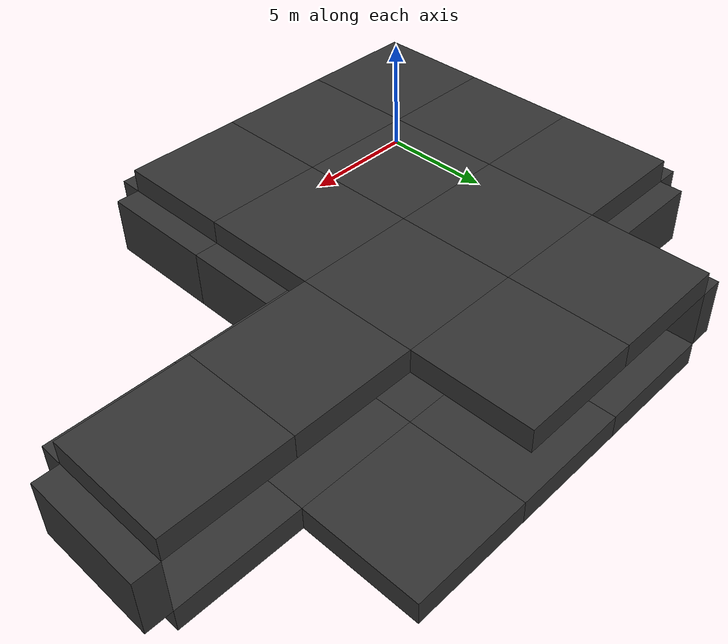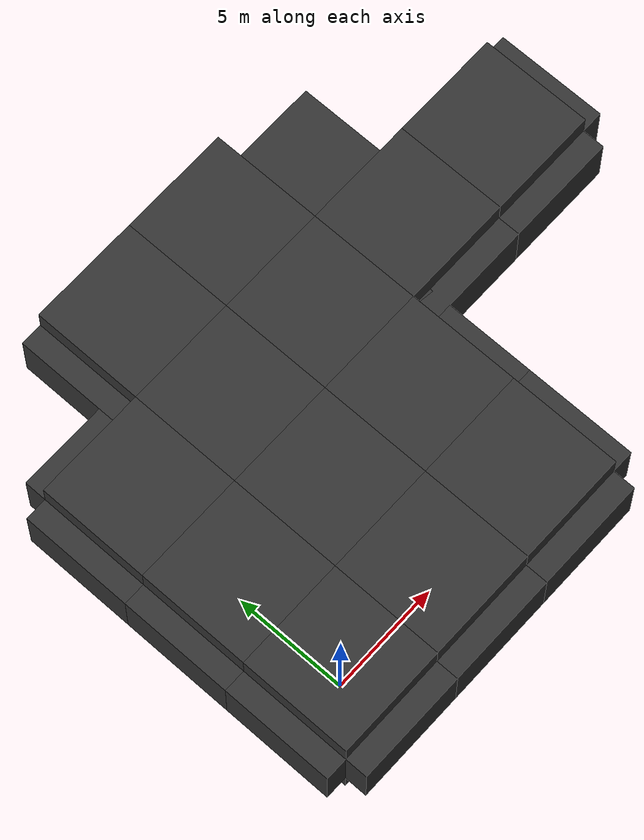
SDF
<sdf version="1.7">
 <world name="RG1">
  <model name="floor_1">
   <static>true</static>
   <pose>0.0 0.0 -0.5 0.0 0.0 0.0</pose>
   <link name="floor_1-base-link">
    <visual name="floor_1-visual">
     <geometry><box><size>5 5 1.0</size></box></geometry>
     <material><diffuse>0.2 0.2 0.2 1</diffuse><specular>0.1 0.1 0.1 1</specular></material>
    </visual>
    <collision name="floor_1-collision"><geometry><box><size>5 5 1.0</size></box></geometry></collision>
   </link>
  </model>
  <model name="ceiling_1">
   <static>true</static>
   <pose>0.0 0.0 2.9 0.0 0.0 0.0</pose>
   <link name="ceiling_1-base-link">
    <visual name="ceiling_1-visual">
     <geometry><box><size>5 5 1.0</size></box></geometry>
     <material><diffuse>0.2 0.2 0.2 1</diffuse><specular>0.1 0.1 0.1 1</specular></material>
    </visual>
    <collision name="ceiling_1-collision"><geometry><box><size>5 5 1.0</size></box></geometry></collision>
    <light type="point" name="ceiling_1-light">
     <pose>0 0 -1 0 0 0</pose>
     <cast_shadows>false</cast_shadows>
     <diffuse>0.8 0.8 0.8 1</diffuse>
     <attenuation>
      <range>10</range>
      <constant>0.8</constant>
      <linear>0.05</linear>
      <quadratic>0.01</quadratic>
     </attenuation>
    </light>
   </link>
  </model>
  <model name="wall_1">
   <static>true</static>
   <pose>-3.0 0.0 1.2 0.0 0.0 1.570796326795</pose>
   <link name="wall_1-base-link">
    <visual name="wall_1-visual">
     <geometry><box><size>5 1 2.4</size></box></geometry>
     <material><diffuse>0.2 0.2 0.2 1</diffuse><specular>0.1 0.1 0.1 1</specular></material>
    </visual>
    <collision name="wall_1-collision"><geometry><box><size>5 1 2.4</size></box></geometry></collision>
   </link>
  </model>
  <model name="wall_2">
   <static>true</static>
   <pose>0.0 -3.0 1.2 0.0 0.0 0.0</pose>
   <link name="wall_2-base-link">
    <visual name="wall_2-visual">
     <geometry><box><size>5 1 2.4</size></box></geometry>
     <material><diffuse>0.2 0.2 0.2 1</diffuse><specular>0.1 0.1 0.1 1</specular></material>
    </visual>
    <collision name="wall_2-collision"><geometry><box><size>5 1 2.4</size></box></geometry></collision>
   </link>
  </model>
  <model name="floor_2">
   <static>true</static>
   <pose>0.0 5.0 -0.5 0.0 0.0 0.0</pose>
   <link name="floor_2-base-link">
    <visual name="floor_2-visual">
     <geometry><box><size>5 5 1.0</size></box></geometry>
     <material><diffuse>0.2 0.2 0.2 1</diffuse><specular>0.1 0.1 0.1 1</specular></material>
    </visual>
    <collision name="floor_2-collision"><geometry><box><size>5 5 1.0</size></box></geometry></collision>
   </link>
  </model>
  <model name="ceiling_2">
   <static>true</static>
   <pose>0.0 5.0 2.9 0.0 0.0 0.0</pose>
   <link name="ceiling_2-base-link">
    <visual name="ceiling_2-visual">
     <geometry><box><size>5 5 1.0</size></box></geometry>
     <material><diffuse>0.2 0.2 0.2 1</diffuse><specular>0.1 0.1 0.1 1</specular></material>
    </visual>
    <collision name="ceiling_2-collision"><geometry><box><size>5 5 1.0</size></box></geometry></collision>
    <light type="point" name="ceiling_2-light">
     <pose>0 0 -1 0 0 0</pose>
     <cast_shadows>false</cast_shadows>
     <diffuse>0.8 0.8 0.8 1</diffuse>
     <attenuation>
      <range>10</range>
      <constant>0.8</constant>
      <linear>0.05</linear>
      <quadratic>0.01</quadratic>
     </attenuation>
    </light>
   </link>
  </model>
  <model name="wall_3">
   <static>true</static>
   <pose>-3.0 5.0 1.2 0.0 0.0 1.570796326795</pose>
   <link name="wall_3-base-link">
    <visual name="wall_3-visual">
     <geometry><box><size>5 1 2.4</size></box></geometry>
     <material><diffuse>0.2 0.2 0.2 1</diffuse><specular>0.1 0.1 0.1 1</specular></material>
    </visual>
    <collision name="wall_3-collision"><geometry><box><size>5 1 2.4</size></box></geometry></collision>
   </link>
  </model>
  <model name="floor_3">
   <static>true</static>
   <pose>0.0 10.0 -0.5 0.0 0.0 0.0</pose>
   <link name="floor_3-base-link">
    <visual name="floor_3-visual">
     <geometry><box><size>5 5 1.0</size></box></geometry>
     <material><diffuse>0.2 0.2 0.2 1</diffuse><specular>0.1 0.1 0.1 1</specular></material>
    </visual>
    <collision name="floor_3-collision"><geometry><box><size>5 5 1.0</size></box></geometry></collision>
   </link>
  </model>
  <model name="ceiling_3">
   <static>true</static>
   <pose>0.0 10.0 2.9 0.0 0.0 0.0</pose>
   <link name="ceiling_3-base-link">
    <visual name="ceiling_3-visual">
     <geometry><box><size>5 5 1.0</size></box></geometry>
     <material><diffuse>0.2 0.2 0.2 1</diffuse><specular>0.1 0.1 0.1 1</specular></material>
    </visual>
    <collision name="ceiling_3-collision"><geometry><box><size>5 5 1.0</size></box></geometry></collision>
    <light type="point" name="ceiling_3-light">
     <pose>0 0 -1 0 0 0</pose>
     <cast_shadows>false</cast_shadows>
     <diffuse>0.8 0.8 0.8 1</diffuse>
     <attenuation>
      <range>10</range>
      <constant>0.8</constant>
      <linear>0.05</linear>
      <quadratic>0.01</quadratic>
     </attenuation>
    </light>
   </link>
  </model>
  <model name="wall_4">
   <static>true</static>
   <pose>-3.0 10.0 1.2 0.0 0.0 1.570796326795</pose>
   <link name="wall_4-base-link">
    <visual name="wall_4-visual">
     <geometry><box><size>5 1 2.4</size></box></geometry>
     <material><diffuse>0.2 0.2 0.2 1</diffuse><specular>0.1 0.1 0.1 1</specular></material>
    </visual>
    <collision name="wall_4-collision"><geometry><box><size>5 1 2.4</size></box></geometry></collision>
   </link>
  </model>
  <model name="wall_5">
   <static>true</static>
   <pose>0.0 13.0 1.2 0.0 0.0 0.0</pose>
   <link name="wall_5-base-link">
    <visual name="wall_5-visual">
     <geometry><box><size>5 1 2.4</size></box></geometry>
     <material><diffuse>0.2 0.2 0.2 1</diffuse><specular>0.1 0.1 0.1 1</specular></material>
    </visual>
    <collision name="wall_5-collision"><geometry><box><size>5 1 2.4</size></box></geometry></collision>
   </link>
  </model>
  <model name="floor_4">
   <static>true</static>
   <pose>5.0 0.0 -0.5 0.0 0.0 0.0</pose>
   <link name="floor_4-base-link">
    <visual name="floor_4-visual">
     <geometry><box><size>5 5 1.0</size></box></geometry>
     <material><diffuse>0.2 0.2 0.2 1</diffuse><specular>0.1 0.1 0.1 1</specular></material>
    </visual>
    <collision name="floor_4-collision"><geometry><box><size>5 5 1.0</size></box></geometry></collision>
   </link>
  </model>
  <model name="ceiling_4">
   <static>true</static>
   <pose>5.0 0.0 2.9 0.0 0.0 0.0</pose>
   <link name="ceiling_4-base-link">
    <visual name="ceiling_4-visual">
     <geometry><box><size>5 5 1.0</size></box></geometry>
     <material><diffuse>0.2 0.2 0.2 1</diffuse><specular>0.1 0.1 0.1 1</specular></material>
    </visual>
    <collision name="ceiling_4-collision"><geometry><box><size>5 5 1.0</size></box></geometry></collision>
    <light type="point" name="ceiling_4-light">
     <pose>0 0 -1 0 0 0</pose>
     <cast_shadows>false</cast_shadows>
     <diffuse>0.8 0.8 0.8 1</diffuse>
     <attenuation>
      <range>10</range>
      <constant>0.8</constant>
      <linear>0.05</linear>
      <quadratic>0.01</quadratic>
     </attenuation>
    </light>
   </link>
  </model>
  <model name="wall_6">
   <static>true</static>
   <pose>5.0 -3.0 1.2 0.0 0.0 0.0</pose>
   <link name="wall_6-base-link">
    <visual name="wall_6-visual">
     <geometry><box><size>5 1 2.4</size></box></geometry>
     <material><diffuse>0.2 0.2 0.2 1</diffuse><specular>0.1 0.1 0.1 1</specular></material>
    </visual>
    <collision name="wall_6-collision"><geometry><box><size>5 1 2.4</size></box></geometry></collision>
   </link>
  </model>
  <model name="floor_5">
   <static>true</static>
   <pose>5.0 5.0 -0.5 0.0 0.0 0.0</pose>
   <link name="floor_5-base-link">
    <visual name="floor_5-visual">
     <geometry><box><size>5 5 1.0</size></box></geometry>
     <material><diffuse>0.2 0.2 0.2 1</diffuse><specular>0.1 0.1 0.1 1</specular></material>
    </visual>
    <collision name="floor_5-collision"><geometry><box><size>5 5 1.0</size></box></geometry></collision>
   </link>
  </model>
  <model name="ceiling_5">
   <static>true</static>
   <pose>5.0 5.0 2.9 0.0 0.0 0.0</pose>
   <link name="ceiling_5-base-link">
    <visual name="ceiling_5-visual">
     <geometry><box><size>5 5 1.0</size></box></geometry>
     <material><diffuse>0.2 0.2 0.2 1</diffuse><specular>0.1 0.1 0.1 1</specular></material>
    </visual>
    <collision name="ceiling_5-collision"><geometry><box><size>5 5 1.0</size></box></geometry></collision>
    <light type="point" name="ceiling_5-light">
     <pose>0 0 -1 0 0 0</pose>
     <cast_shadows>false</cast_shadows>
     <diffuse>0.8 0.8 0.8 1</diffuse>
     <attenuation>
      <range>10</range>
      <constant>0.8</constant>
      <linear>0.05</linear>
      <quadratic>0.01</quadratic>
     </attenuation>
    </light>
   </link>
  </model>
  <model name="floor_6">
   <static>true</static>
   <pose>5.0 10.0 -0.5 0.0 0.0 0.0</pose>
   <link name="floor_6-base-link">
    <visual name="floor_6-visual">
     <geometry><box><size>5 5 1.0</size></box></geometry>
     <material><diffuse>0.2 0.2 0.2 1</diffuse><specular>0.1 0.1 0.1 1</specular></material>
    </visual>
    <collision name="floor_6-collision"><geometry><box><size>5 5 1.0</size></box></geometry></collision>
   </link>
  </model>
  <model name="ceiling_6">
   <static>true</static>
   <pose>5.0 10.0 2.9 0.0 0.0 0.0</pose>
   <link name="ceiling_6-base-link">
    <visual name="ceiling_6-visual">
     <geometry><box><size>5 5 1.0</size></box></geometry>
     <material><diffuse>0.2 0.2 0.2 1</diffuse><specular>0.1 0.1 0.1 1</specular></material>
    </visual>
    <collision name="ceiling_6-collision"><geometry><box><size>5 5 1.0</size></box></geometry></collision>
    <light type="point" name="ceiling_6-light">
     <pose>0 0 -1 0 0 0</pose>
     <cast_shadows>false</cast_shadows>
     <diffuse>0.8 0.8 0.8 1</diffuse>
     <attenuation>
      <range>10</range>
      <constant>0.8</constant>
      <linear>0.05</linear>
      <quadratic>0.01</quadratic>
     </attenuation>
    </light>
   </link>
  </model>
  <model name="floor_7">
   <static>true</static>
   <pose>5.0 15.0 -0.5 0.0 0.0 0.0</pose>
   <link name="floor_7-base-link">
    <visual name="floor_7-visual">
     <geometry><box><size>5 5 1.0</size></box></geometry>
     <material><diffuse>0.2 0.2 0.2 1</diffuse><specular>0.1 0.1 0.1 1</specular></material>
    </visual>
    <collision name="floor_7-collision"><geometry><box><size>5 5 1.0</size></box></geometry></collision>
   </link>
  </model>
  <model name="ceiling_7">
   <static>true</static>
   <pose>5.0 15.0 2.9 0.0 0.0 0.0</pose>
   <link name="ceiling_7-base-link">
    <visual name="ceiling_7-visual">
     <geometry><box><size>5 5 1.0</size></box></geometry>
     <material><diffuse>0.2 0.2 0.2 1</diffuse><specular>0.1 0.1 0.1 1</specular></material>
    </visual>
    <collision name="ceiling_7-collision"><geometry><box><size>5 5 1.0</size></box></geometry></collision>
    <light type="point" name="ceiling_7-light">
     <pose>0 0 -1 0 0 0</pose>
     <cast_shadows>false</cast_shadows>
     <diffuse>0.8 0.8 0.8 1</diffuse>
     <attenuation>
      <range>10</range>
      <constant>0.8</constant>
      <linear>0.05</linear>
      <quadratic>0.01</quadratic>
     </attenuation>
    </light>
   </link>
  </model>
  <model name="wall_7">
   <static>true</static>
   <pose>2.0 15.0 1.2 0.0 0.0 1.570796326795</pose>
   <link name="wall_7-base-link">
    <visual name="wall_7-visual">
     <geometry><box><size>5 1 2.4</size></box></geometry>
     <material><diffuse>0.2 0.2 0.2 1</diffuse><specular>0.1 0.1 0.1 1</specular></material>
    </visual>
    <collision name="wall_7-collision"><geometry><box><size>5 1 2.4</size></box></geometry></collision>
   </link>
  </model>
  <model name="floor_10">
   <static>true</static>
   <pose>10.0 0.0 -0.5 0.0 0.0 0.0</pose>
   <link name="floor_10-base-link">
    <visual name="floor_10-visual">
     <geometry><box><size>5 5 1.0</size></box></geometry>
     <material><diffuse>0.2 0.2 0.2 1</diffuse><specular>0.1 0.1 0.1 1</specular></material>
    </visual>
    <collision name="floor_10-collision"><geometry><box><size>5 5 1.0</size></box></geometry></collision>
   </link>
  </model>
  <model name="ceiling_10">
   <static>true</static>
   <pose>10.0 0.0 2.9 0.0 0.0 0.0</pose>
   <link name="ceiling_10-base-link">
    <visual name="ceiling_10-visual">
     <geometry><box><size>5 5 1.0</size></box></geometry>
     <material><diffuse>0.2 0.2 0.2 1</diffuse><specular>0.1 0.1 0.1 1</specular></material>
    </visual>
    <collision name="ceiling_10-collision"><geometry><box><size>5 5 1.0</size></box></geometry></collision>
    <light type="point" name="ceiling_10-light">
     <pose>0 0 -1 0 0 0</pose>
     <cast_shadows>false</cast_shadows>
     <diffuse>0.8 0.8 0.8 1</diffuse>
     <attenuation>
      <range>10</range>
      <constant>0.8</constant>
      <linear>0.05</linear>
      <quadratic>0.01</quadratic>
     </attenuation>
    </light>
   </link>
  </model>
  <model name="wall_11">
   <static>true</static>
   <pose>13.0 0.0 1.2 0.0 0.0 1.570796326795</pose>
   <link name="wall_11-base-link">
    <visual name="wall_11-visual">
     <geometry><box><size>5 1 2.4</size></box></geometry>
     <material><diffuse>0.2 0.2 0.2 1</diffuse><specular>0.1 0.1 0.1 1</specular></material>
    </visual>
    <collision name="wall_11-collision"><geometry><box><size>5 1 2.4</size></box></geometry></collision>
   </link>
  </model>
  <model name="wall_12">
   <static>true</static>
   <pose>10.0 -3.0 1.2 0.0 0.0 0.0</pose>
   <link name="wall_12-base-link">
    <visual name="wall_12-visual">
     <geometry><box><size>5 1 2.4</size></box></geometry>
     <material><diffuse>0.2 0.2 0.2 1</diffuse><specular>0.1 0.1 0.1 1</specular></material>
    </visual>
    <collision name="wall_12-collision"><geometry><box><size>5 1 2.4</size></box></geometry></collision>
   </link>
  </model>
  <model name="floor_11">
   <static>true</static>
   <pose>10.0 5.0 -0.5 0.0 0.0 0.0</pose>
   <link name="floor_11-base-link">
    <visual name="floor_11-visual">
     <geometry><box><size>5 5 1.0</size></box></geometry>
     <material><diffuse>0.2 0.2 0.2 1</diffuse><specular>0.1 0.1 0.1 1</specular></material>
    </visual>
    <collision name="floor_11-collision"><geometry><box><size>5 5 1.0</size></box></geometry></collision>
   </link>
  </model>
  <model name="ceiling_11">
   <static>true</static>
   <pose>10.0 5.0 2.9 0.0 0.0 0.0</pose>
   <link name="ceiling_11-base-link">
    <visual name="ceiling_11-visual">
     <geometry><box><size>5 5 1.0</size></box></geometry>
     <material><diffuse>0.2 0.2 0.2 1</diffuse><specular>0.1 0.1 0.1 1</specular></material>
    </visual>
    <collision name="ceiling_11-collision"><geometry><box><size>5 5 1.0</size></box></geometry></collision>
    <light type="point" name="ceiling_11-light">
     <pose>0 0 -1 0 0 0</pose>
     <cast_shadows>false</cast_shadows>
     <diffuse>0.8 0.8 0.8 1</diffuse>
     <attenuation>
      <range>10</range>
      <constant>0.8</constant>
      <linear>0.05</linear>
      <quadratic>0.01</quadratic>
     </attenuation>
    </light>
   </link>
  </model>
  <model name="wall_13">
   <static>true</static>
   <pose>13.0 5.0 1.2 0.0 0.0 1.570796326795</pose>
   <link name="wall_13-base-link">
    <visual name="wall_13-visual">
     <geometry><box><size>5 1 2.4</size></box></geometry>
     <material><diffuse>0.2 0.2 0.2 1</diffuse><specular>0.1 0.1 0.1 1</specular></material>
    </visual>
    <collision name="wall_13-collision"><geometry><box><size>5 1 2.4</size></box></geometry></collision>
   </link>
  </model>
  <model name="floor_12">
   <static>true</static>
   <pose>10.0 10.0 -0.5 0.0 0.0 0.0</pose>
   <link name="floor_12-base-link">
    <visual name="floor_12-visual">
     <geometry><box><size>5 5 1.0</size></box></geometry>
     <material><diffuse>0.2 0.2 0.2 1</diffuse><specular>0.1 0.1 0.1 1</specular></material>
    </visual>
    <collision name="floor_12-collision"><geometry><box><size>5 5 1.0</size></box></geometry></collision>
   </link>
  </model>
  <model name="ceiling_12">
   <static>true</static>
   <pose>10.0 10.0 2.9 0.0 0.0 0.0</pose>
   <link name="ceiling_12-base-link">
    <visual name="ceiling_12-visual">
     <geometry><box><size>5 5 1.0</size></box></geometry>
     <material><diffuse>0.2 0.2 0.2 1</diffuse><specular>0.1 0.1 0.1 1</specular></material>
    </visual>
    <collision name="ceiling_12-collision"><geometry><box><size>5 5 1.0</size></box></geometry></collision>
    <light type="point" name="ceiling_12-light">
     <pose>0 0 -1 0 0 0</pose>
     <cast_shadows>false</cast_shadows>
     <diffuse>0.8 0.8 0.8 1</diffuse>
     <attenuation>
      <range>10</range>
      <constant>0.8</constant>
      <linear>0.05</linear>
      <quadratic>0.01</quadratic>
     </attenuation>
    </light>
   </link>
  </model>
  <model name="floor_13">
   <static>true</static>
   <pose>10.0 15.0 -0.5 0.0 0.0 0.0</pose>
   <link name="floor_13-base-link">
    <visual name="floor_13-visual">
     <geometry><box><size>5 5 1.0</size></box></geometry>
     <material><diffuse>0.2 0.2 0.2 1</diffuse><specular>0.1 0.1 0.1 1</specular></material>
    </visual>
    <collision name="floor_13-collision"><geometry><box><size>5 5 1.0</size></box></geometry></collision>
   </link>
  </model>
  <model name="ceiling_13">
   <static>true</static>
   <pose>10.0 15.0 2.9 0.0 0.0 0.0</pose>
   <link name="ceiling_13-base-link">
    <visual name="ceiling_13-visual">
     <geometry><box><size>5 5 1.0</size></box></geometry>
     <material><diffuse>0.2 0.2 0.2 1</diffuse><specular>0.1 0.1 0.1 1</specular></material>
    </visual>
    <collision name="ceiling_13-collision"><geometry><box><size>5 5 1.0</size></box></geometry></collision>
    <light type="point" name="ceiling_13-light">
     <pose>0 0 -1 0 0 0</pose>
     <cast_shadows>false</cast_shadows>
     <diffuse>0.8 0.8 0.8 1</diffuse>
     <attenuation>
      <range>10</range>
      <constant>0.8</constant>
      <linear>0.05</linear>
      <quadratic>0.01</quadratic>
     </attenuation>
    </light>
   </link>
  </model>
  <model name="floor_18">
   <static>true</static>
   <pose>15.0 10.0 -0.5 0.0 0.0 0.0</pose>
   <link name="floor_18-base-link">
    <visual name="floor_18-visual">
     <geometry><box><size>5 5 1.0</size></box></geometry>
     <material><diffuse>0.2 0.2 0.2 1</diffuse><specular>0.1 0.1 0.1 1</specular></material>
    </visual>
    <collision name="floor_18-collision"><geometry><box><size>5 5 1.0</size></box></geometry></collision>
   </link>
  </model>
  <model name="ceiling_18">
   <static>true</static>
   <pose>15.0 10.0 2.9 0.0 0.0 0.0</pose>
   <link name="ceiling_18-base-link">
    <visual name="ceiling_18-visual">
     <geometry><box><size>5 5 1.0</size></box></geometry>
     <material><diffuse>0.2 0.2 0.2 1</diffuse><specular>0.1 0.1 0.1 1</specular></material>
    </visual>
    <collision name="ceiling_18-collision"><geometry><box><size>5 5 1.0</size></box></geometry></collision>
    <light type="point" name="ceiling_18-light">
     <pose>0 0 -1 0 0 0</pose>
     <cast_shadows>false</cast_shadows>
     <diffuse>0.8 0.8 0.8 1</diffuse>
     <attenuation>
      <range>10</range>
      <constant>0.8</constant>
      <linear>0.05</linear>
      <quadratic>0.01</quadratic>
     </attenuation>
    </light>
   </link>
  </model>
  <model name="wall_17">
   <static>true</static>
   <pose>15.0 7.0 1.2 0.0 0.0 0.0</pose>
   <link name="wall_17-base-link">
    <visual name="wall_17-visual">
     <geometry><box><size>5 1 2.4</size></box></geometry>
     <material><diffuse>0.2 0.2 0.2 1</diffuse><specular>0.1 0.1 0.1 1</specular></material>
    </visual>
    <collision name="wall_17-collision"><geometry><box><size>5 1 2.4</size></box></geometry></collision>
   </link>
  </model>
  <model name="floor_19">
   <static>true</static>
   <pose>15.0 15.0 -0.5 0.0 0.0 0.0</pose>
   <link name="floor_19-base-link">
    <visual name="floor_19-visual">
     <geometry><box><size>5 5 1.0</size></box></geometry>
     <material><diffuse>0.2 0.2 0.2 1</diffuse><specular>0.1 0.1 0.1 1</specular></material>
    </visual>
    <collision name="floor_19-collision"><geometry><box><size>5 5 1.0</size></box></geometry></collision>
   </link>
  </model>
  <model name="floor_24">
   <static>true</static>
   <pose>20.0 10.0 -0.5 0.0 0.0 0.0</pose>
   <link name="floor_24-base-link">
    <visual name="floor_24-visual">
     <geometry><box><size>5 5 1.0</size></box></geometry>
     <material><diffuse>0.2 0.2 0.2 1</diffuse><specular>0.1 0.1 0.1 1</specular></material>
    </visual>
    <collision name="floor_24-collision"><geometry><box><size>5 5 1.0</size></box></geometry></collision>
   </link>
  </model>
  <model name="ceiling_24">
   <static>true</static>
   <pose>20.0 10.0 2.9 0.0 0.0 0.0</pose>
   <link name="ceiling_24-base-link">
    <visual name="ceiling_24-visual">
     <geometry><box><size>5 5 1.0</size></box></geometry>
     <material><diffuse>0.2 0.2 0.2 1</diffuse><specular>0.1 0.1 0.1 1</specular></material>
    </visual>
    <collision name="ceiling_24-collision"><geometry><box><size>5 5 1.0</size></box></geometry></collision>
    <light type="point" name="ceiling_24-light">
     <pose>0 0 -1 0 0 0</pose>
     <cast_shadows>false</cast_shadows>
     <diffuse>0.8 0.8 0.8 1</diffuse>
     <attenuation>
      <range>10</range>
      <constant>0.8</constant>
      <linear>0.05</linear>
      <quadratic>0.01</quadratic>
     </attenuation>
    </light>
   </link>
  </model>
  <model name="wall_21">
   <static>true</static>
   <pose>23.0 10.0 1.2 0.0 0.0 1.570796326795</pose>
   <link name="wall_21-base-link">
    <visual name="wall_21-visual">
     <geometry><box><size>5 1 2.4</size></box></geometry>
     <material><diffuse>0.2 0.2 0.2 1</diffuse><specular>0.1 0.1 0.1 1</specular></material>
    </visual>
    <collision name="wall_21-collision"><geometry><box><size>5 1 2.4</size></box></geometry></collision>
   </link>
  </model>
  <model name="wall_22">
   <static>true</static>
   <pose>20.0 7.0 1.2 0.0 0.0 0.0</pose>
   <link name="wall_22-base-link">
    <visual name="wall_22-visual">
     <geometry><box><size>5 1 2.4</size></box></geometry>
     <material><diffuse>0.2 0.2 0.2 1</diffuse><specular>0.1 0.1 0.1 1</specular></material>
    </visual>
    <collision name="wall_22-collision"><geometry><box><size>5 1 2.4</size></box></geometry></collision>
   </link>
  </model>
 </world>
</sdf>
